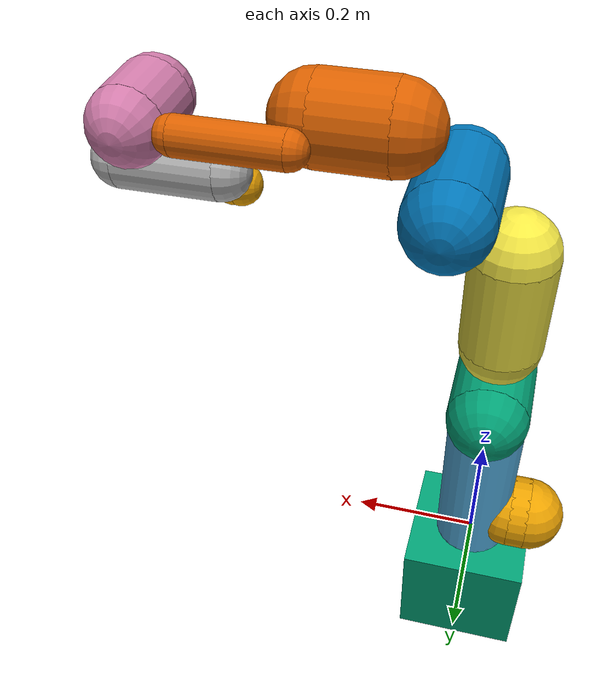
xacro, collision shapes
<?xml version="1.0"?>

<robot name="panda_insert" xmlns:xacro="http://ros.org/wiki/xacro">

  <xacro:include filename="$(find franka_description)/robots/panda_arm.urdf.xacro" />

  <link name="world" />

  <joint name="insert_link_joint" type="fixed">
    <origin xyz="0 0 0" rpy="0 0 0" />
    <parent link="panda_link0"/>
    <child link="insert_link" />
  </joint>

  <link name="insert_link">
    <visual>
      <origin xyz="0 0 -.1" rpy="0 0 0" />
      <geometry>
        <box size=".2 .2 .2"/>
      </geometry>
    </visual>
    <collision>
      <origin xyz="0 0 -.1"/>
      <geometry>
        <box size=".2 .2 .2"/>
      </geometry>
    </collision>
    <inertial>
      <origin xyz="-0.01103 0 0.002" rpy="0 0 0"/>
      <mass value="2.844"/>
      <inertia
        ixx="0.018819942" ixy="0" ixz="-0.000101519"
        iyy="0.057333716" iyz="0"
        izz="0.074201740"/>
    </inertial>
  </link>

   <!-- Load world prismatic joints-->
  <xacro:macro name="prismatic_joint_macro" params="axis_name z:=0 axis parent child">
    <joint name="panda_${axis_name}_joint" type="prismatic">
      <origin xyz="0 0 0" rpy="0 0 0" />
      <parent link="${parent}"/>
      <child link="${child}" />
      <axis xyz="${axis}"/>
      <limit effort="1000" lower="-100" upper="100" velocity="2"/>
    </joint>

    <link name="arm_${axis_name}_link">
    <inertial>
    <origin xyz="0 0 0" rpy="0 0 0" />
    <mass value="1" />
    <inertia
        ixx="1.0" ixy="0.0" ixz="0.0"
        iyy="1.0" iyz="0.0"
        izz="1.0" />
    </inertial>
    </link>

    <transmission name="panda_${axis_name}_transmission">
      <type>transmission_interface/SimpleTransmission</type>
      <joint name="panda_${axis_name}_joint">
          <hardwareInterface>hardware_interface/EffortJointInterface</hardwareInterface>
      </joint>
      <actuator name="panda_${axis_name}_joint_motor">
          <mechanicalReduction>1</mechanicalReduction>
      </actuator>
    </transmission>
  </xacro:macro>

  <xacro:prismatic_joint_macro axis_name="x" z="0" axis="1 0 0" parent="world" child="arm_x_link"/>
  <xacro:prismatic_joint_macro axis_name="y" axis="0 1 0" parent="arm_x_link" child="arm_y_link"/>
  <xacro:prismatic_joint_macro axis_name="z" axis="0 0 1" parent="arm_y_link" child="arm_z_link"/>

  <!-- Load world rotation joint -->
  <joint name="panda_z_rotation_joint" type="continuous">
    <origin xyz="0 0 0" rpy="0 0 0" />
    <parent link="arm_z_link"/>
    <child link="panda_link0" />
    <axis xyz="0 0 1"/>
    <limit effort="1000.0" velocity="2"/>
  </joint>

  <transmission name="panda_z_rotation_transmission">
    <type>transmission_interface/SimpleTransmission</type>
    <joint name="panda_z_rotation_joint">
        <hardwareInterface>hardware_interface/EffortJointInterface</hardwareInterface>
    </joint>
    <actuator name="panda_z_rotation_joint_motor">
        <mechanicalReduction>1</mechanicalReduction>
    </actuator>
  </transmission>

  <gazebo>
    <plugin name="gazebo_ros_control" filename="libgazebo_ros_control.so">
        <robotNamespace>${arm_id}</robotNamespace>
        <robotSimType>franka_gazebo/FrankaHWSim</robotSimType>
    </plugin>
  </gazebo>
</robot>

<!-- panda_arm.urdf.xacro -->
<robot xmlns:xacro="http://www.ros.org/wiki/xacro" name="panda">
  <xacro:include filename="$(find franka_description)/robots/panda_arm.xacro" />
  <xacro:panda_arm safety_distance="0.00"/>
</robot>

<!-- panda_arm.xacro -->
<robot xmlns:xacro="http://www.ros.org/wiki/xacro" name="panda">
  <!-- safety_distance: Minimum safety distance in [m] by which the collision volumes are expanded and which is enforced during robot motions -->
  <!-- arm_id: Namespace of the panda arm. Serves to differentiate between arms in case of multiple instances. -->
  <xacro:macro name="panda_arm" params="arm_id:='panda' description_pkg:='franka_description' connected_to:='' xyz:='0 0 0' rpy:='0 0 0' safety_distance:=0">
    <xacro:unless value="${not connected_to}">
      <joint name="${arm_id}_joint_${connected_to}" type="fixed">
        <parent link="${connected_to}"/>
        <child link="${arm_id}_link0"/>
        <origin rpy="${rpy}" xyz="${xyz}"/>
      </joint>
    </xacro:unless>
    <link name="${arm_id}_link0">
      <visual>
        <geometry>
          <mesh filename="package://${description_pkg}/meshes/visual/link0.dae"/>
        </geometry>
      </visual>
      <collision>
        <origin xyz="-0.075 0 0.06" rpy="0 ${pi/2} 0"/>
        <geometry>
          <cylinder radius="${0.06+safety_distance}" length="0.03" />
        </geometry>
      </collision>
      <collision>
        <origin xyz="-0.06 0 0.06" rpy="0 0 0"/>
        <geometry>
          <sphere radius="${0.06+safety_distance}" />
        </geometry>
      </collision>
      <collision>
        <origin xyz="-0.09 0 0.06" rpy="0 0 0"/>
        <geometry>
          <sphere radius="${0.06+safety_distance}" />
        </geometry>
      </collision>
    </link>
    <link name="${arm_id}_link1">
      <visual>
        <geometry>
          <mesh filename="package://${description_pkg}/meshes/visual/link1.dae"/>
        </geometry>
      </visual>
      <collision>
        <origin xyz="0 0 -0.1915" rpy="0 0 0"/>
        <geometry>
          <cylinder radius="${0.06+safety_distance}" length="0.2830" />
        </geometry>
      </collision>
      <collision>
        <origin xyz="0 0 -0.333" rpy="0 0 0"/>
        <geometry>
          <sphere radius="${0.06+safety_distance}" />
        </geometry>
      </collision>
      <collision>
        <origin xyz="0 0 -0.05" rpy="0 0 0"/>
        <geometry>
          <sphere radius="${0.06+safety_distance}" />
        </geometry>
      </collision>
    </link>
    <joint name="${arm_id}_joint1" type="revolute">
      <safety_controller k_position="100.0" k_velocity="40.0" soft_lower_limit="-2.8973" soft_upper_limit="2.8973"/>
      <origin rpy="0 0 0" xyz="0 0 0.333"/>
      <parent link="${arm_id}_link0"/>
      <child link="${arm_id}_link1"/>
      <axis xyz="0 0 1"/>
      <limit effort="87" lower="-2.8973" upper="2.8973" velocity="2.1750"/>
    </joint>
    <link name="${arm_id}_link2">
      <visual>
        <geometry>
          <mesh filename="package://${description_pkg}/meshes/visual/link2.dae"/>
        </geometry>
      </visual>
      <collision>
        <origin xyz="0 0 0" rpy="0 0 0"/>
        <geometry>
          <cylinder radius="${0.06+safety_distance}" length="0.12" />
        </geometry>
      </collision>
      <collision>
        <origin xyz="0 0 -0.06" rpy="0 0 0"/>
        <geometry>
          <sphere radius="${0.06+safety_distance}" />
        </geometry>
      </collision>
      <collision>
        <origin xyz="0 0 0.06" rpy="0 0 0"/>
        <geometry>
          <sphere radius="${0.06+safety_distance}" />
        </geometry>
      </collision>
    </link>
    <joint name="${arm_id}_joint2" type="revolute">
      <safety_controller k_position="100.0" k_velocity="40.0" soft_lower_limit="-1.7628" soft_upper_limit="1.7628"/>
      <origin rpy="${-pi/2} 0 0" xyz="0 0 0"/>
      <parent link="${arm_id}_link1"/>
      <child link="${arm_id}_link2"/>
      <axis xyz="0 0 1"/>
      <limit effort="87" lower="-1.7628" upper="1.7628" velocity="2.1750"/>
    </joint>
    <link name="${arm_id}_link3">
      <visual>
        <geometry>
          <mesh filename="package://${description_pkg}/meshes/visual/link3.dae"/>
        </geometry>
      </visual>
      <collision>
        <origin xyz="0 0 -0.145" rpy="0 0 0"/>
        <geometry>
          <cylinder radius="${0.06+safety_distance}" length="0.15" />
        </geometry>
      </collision>
      <collision>
        <origin xyz="0 0 -0.22" rpy="0 0 0"/>
        <geometry>
          <sphere radius="${0.06+safety_distance}" />
        </geometry>
      </collision>
      <collision>
        <origin xyz="0 0 -0.07" rpy="0 0 0"/>
        <geometry>
          <sphere radius="${0.06+safety_distance}" />
        </geometry>
      </collision>
    </link>
    <joint name="${arm_id}_joint3" type="revolute">
      <safety_controller k_position="100.0" k_velocity="40.0" soft_lower_limit="-2.8973" soft_upper_limit="2.8973"/>
      <origin rpy="${pi/2} 0 0" xyz="0 -0.316 0"/>
      <parent link="${arm_id}_link2"/>
      <child link="${arm_id}_link3"/>
      <axis xyz="0 0 1"/>
      <limit effort="87" lower="-2.8973" upper="2.8973" velocity="2.1750"/>
    </joint>
    <link name="${arm_id}_link4">
      <visual>
        <geometry>
          <mesh filename="package://${description_pkg}/meshes/visual/link4.dae"/>
        </geometry>
      </visual>
      <collision>
        <origin xyz="0 0 0" rpy="0 0 0"/>
        <geometry>
          <cylinder radius="${0.06+safety_distance}" length="0.12" />
        </geometry>
      </collision>
      <collision>
        <origin xyz="0 0 0.06" rpy="0 0 0"/>
        <geometry>
          <sphere radius="${0.06+safety_distance}" />
        </geometry>
      </collision>
      <collision>
        <origin xyz="0 0 -0.06" rpy="0 0 0"/>
        <geometry>
          <sphere radius="${0.06+safety_distance}" />
        </geometry>
      </collision>
    </link>
    <joint name="${arm_id}_joint4" type="revolute">
      <safety_controller k_position="100.0" k_velocity="40.0" soft_lower_limit="-3.0718" soft_upper_limit="-0.0698"/>
      <origin rpy="${pi/2} 0 0" xyz="0.0825 0 0"/>
      <parent link="${arm_id}_link3"/>
      <child link="${arm_id}_link4"/>
      <axis xyz="0 0 1"/>
      <limit effort="87" lower="-3.0718" upper="-0.0698" velocity="2.1750"/>
    </joint>
    <link name="${arm_id}_link5">
      <visual>
        <geometry>
          <mesh filename="package://${description_pkg}/meshes/visual/link5.dae"/>
        </geometry>
      </visual>
      <collision>
        <origin xyz="0 0 -0.26" rpy="0 0 0"/>
        <geometry>
          <cylinder radius="${0.06+safety_distance}" length="0.1" />
        </geometry>
      </collision>
      <collision>
        <origin xyz="0 0 -0.31" rpy="0 0 0"/>
        <geometry>
          <sphere radius="${0.06+safety_distance}" />
        </geometry>
      </collision>
      <collision>
        <origin xyz="0 0 -0.21" rpy="0 0 0"/>
        <geometry>
          <sphere radius="${0.06+safety_distance}" />
        </geometry>
      </collision>
      <collision>
        <origin xyz="0 0.08 -0.13" rpy="0 0 0"/>
        <geometry>
          <cylinder radius="${0.025+safety_distance}" length="0.14" />
        </geometry>
      </collision>
      <collision>
        <origin xyz="0 0.08 -0.06" rpy="0 0 0"/>
        <geometry>
          <sphere radius="${0.025+safety_distance}" />
        </geometry>
      </collision>
      <collision>
        <origin xyz="0 0.08 -0.20" rpy="0 0 0"/>
        <geometry>
          <sphere radius="${0.025+safety_distance}" />
        </geometry>
      </collision>

    </link>
    <joint name="${arm_id}_joint5" type="revolute">
      <safety_controller k_position="100.0" k_velocity="40.0" soft_lower_limit="-2.8973" soft_upper_limit="2.8973"/>
      <origin rpy="${-pi/2} 0 0" xyz="-0.0825 0.384 0"/>
      <parent link="${arm_id}_link4"/>
      <child link="${arm_id}_link5"/>
      <axis xyz="0 0 1"/>
      <limit effort="12" lower="-2.8973" upper="2.8973" velocity="2.6100"/>
    </joint>
    <link name="${arm_id}_link6">
      <visual>
        <geometry>
          <mesh filename="package://${description_pkg}/meshes/visual/link6.dae"/>
        </geometry>
      </visual>
      <collision>
        <origin xyz="0 0 -0.03" rpy="0 0 0"/>
        <geometry>
          <cylinder radius="${0.05+safety_distance}" length="0.08" />
        </geometry>
      </collision>
      <collision>
        <origin xyz="0 0 0.01" rpy="0 0 0"/>
        <geometry>
          <sphere radius="${0.05+safety_distance}" />
        </geometry>
      </collision>
      <collision>
        <origin xyz="0 0 -0.07" rpy="0 0 0"/>
        <geometry>
          <sphere radius="${0.05+safety_distance}" />
        </geometry>
      </collision>
    </link>
    <joint name="${arm_id}_joint6" type="revolute">
      <safety_controller k_position="100.0" k_velocity="40.0" soft_lower_limit="-0.0175" soft_upper_limit="3.7525"/>
      <origin rpy="${pi/2} 0 0" xyz="0 0 0"/>
      <parent link="${arm_id}_link5"/>
      <child link="${arm_id}_link6"/>
      <axis xyz="0 0 1"/>
      <limit effort="12" lower="-0.0175" upper="3.7525" velocity="2.6100"/>
    </joint>
    <link name="${arm_id}_link7">
      <visual>
        <geometry>
          <mesh filename="package://${description_pkg}/meshes/visual/link7.dae"/>
        </geometry>
      </visual>
      <collision>
        <origin xyz="0 0 0.01" rpy="0 0 0"/>
        <geometry>
          <cylinder radius="${0.04+safety_distance}" length="0.14" />
        </geometry>
      </collision>
      <collision>
        <origin xyz="0 0 0.08" rpy="0 0 0"/>
        <geometry>
          <sphere radius="${0.04+safety_distance}"  />
        </geometry>
      </collision>
      <collision>
        <origin xyz="0 0 -0.06" rpy="0 0 0"/>
        <geometry>
          <sphere radius="${0.04+safety_distance}"  />
        </geometry>
      </collision>
    </link>
    <joint name="${arm_id}_joint7" type="revolute">
      <safety_controller k_position="100.0" k_velocity="40.0" soft_lower_limit="-2.8973" soft_upper_limit="2.8973"/>
      <origin rpy="${pi/2} 0 0" xyz="0.088 0 0"/>
      <parent link="${arm_id}_link6"/>
      <child link="${arm_id}_link7"/>
      <axis xyz="0 0 1"/>
      <limit effort="12" lower="-2.8973" upper="2.8973" velocity="2.6100"/>
    </joint>
    <link name="${arm_id}_link8">
      <collision>
        <origin xyz="0.0424 0.0424 -0.0250" rpy="${pi} ${pi/2} ${pi/2}"/>
        <geometry>
          <cylinder radius="${0.03+safety_distance}"  length="0.01" />
        </geometry>
      </collision>
      <collision>
        <origin xyz="0.0424 0.0424 -0.02" rpy="0 0 0"/>
        <geometry>
          <sphere radius="${0.03+safety_distance}"  />
        </geometry>
      </collision>
      <collision>
        <origin xyz="0.0424 0.0424 -0.03" rpy="0 0 0"/>
        <geometry>
          <sphere radius="${0.03+safety_distance}"  />
        </geometry>
      </collision>
    </link>
    <joint name="${arm_id}_joint8" type="fixed">
      <origin rpy="0 0 0" xyz="0 0 0.107"/>
      <parent link="${arm_id}_link7"/>
      <child link="${arm_id}_link8"/>
    </joint>
  </xacro:macro>
</robot>
